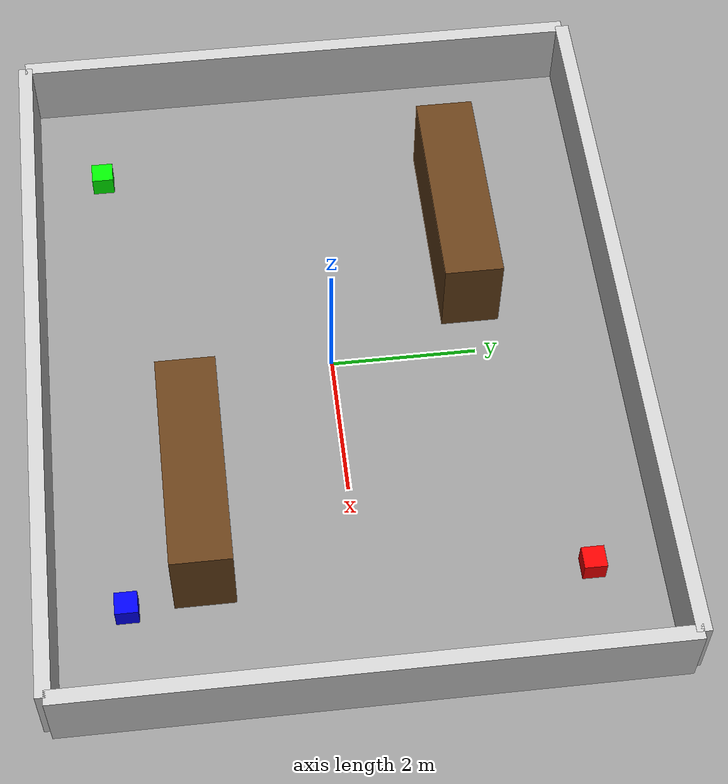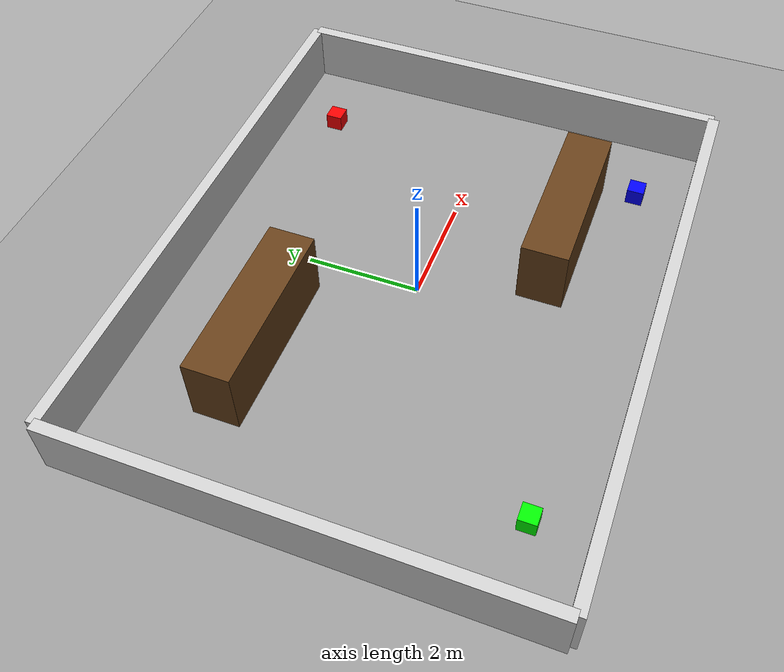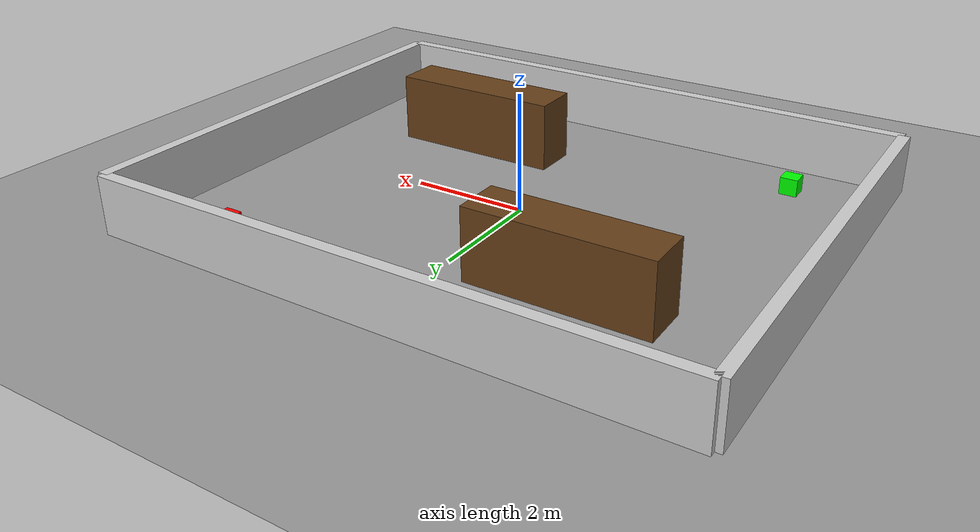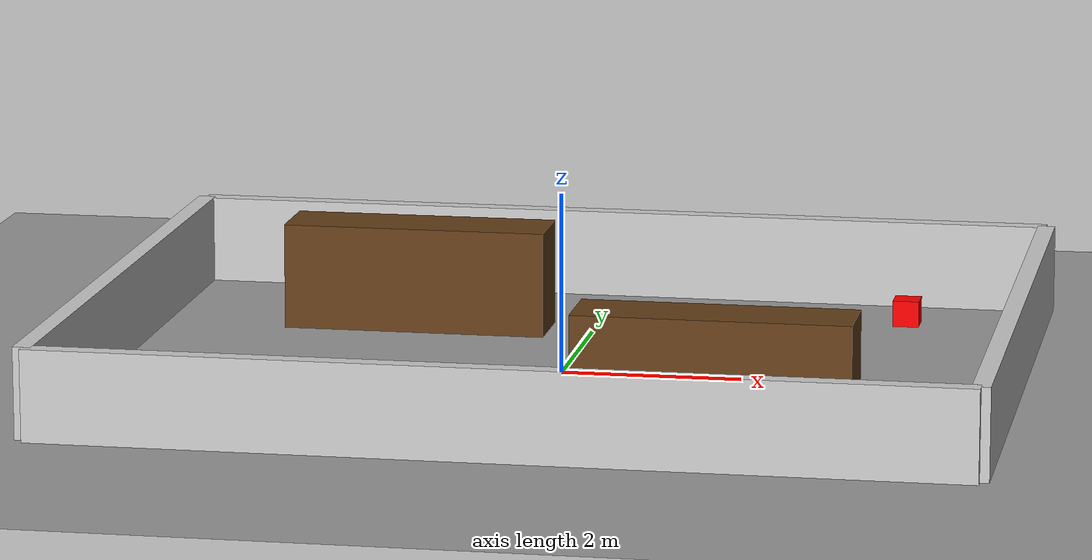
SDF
<?xml version="1.0"?>
<!-- Lightweight simulation world: minimal box geometry, walls, a couple of
     racks, and three colored target cubes (red / green / blue) for object-goal
     navigation. -->
<sdf version="1.8">
  <world name="sim_world">

    <physics name="1ms" type="ignored">
      <max_step_size>0.004</max_step_size>
      <real_time_factor>1.0</real_time_factor>
    </physics>

    <plugin filename="ignition-gazebo-physics-system"
            name="ignition::gazebo::systems::Physics"/>
    <plugin filename="ignition-gazebo-user-commands-system"
            name="ignition::gazebo::systems::UserCommands"/>
    <plugin filename="ignition-gazebo-scene-broadcaster-system"
            name="ignition::gazebo::systems::SceneBroadcaster"/>
    <plugin filename="ignition-gazebo-sensors-system"
            name="ignition::gazebo::systems::Sensors">
      <render_engine>ogre2</render_engine>
    </plugin>

    <scene>
      <ambient>1.0 1.0 1.0 1.0</ambient>
      <background>0.7 0.7 0.8 1.0</background>
      <shadows>false</shadows>
    </scene>

    <light type="directional" name="sun">
      <cast_shadows>false</cast_shadows>
      <pose>0 0 10 0 0 0</pose>
      <diffuse>0.9 0.9 0.9 1</diffuse>
      <specular>0.1 0.1 0.1 1</specular>
      <direction>-0.3 0.2 -0.9</direction>
    </light>

    <model name="ground_plane">
      <static>true</static>
      <link name="link">
        <collision name="collision">
          <geometry><plane><normal>0 0 1</normal><size>30 30</size></plane></geometry>
        </collision>
        <visual name="visual">
          <geometry><plane><normal>0 0 1</normal><size>30 30</size></plane></geometry>
          <material>
            <ambient>0.5 0.5 0.5 1</ambient>
            <diffuse>0.6 0.6 0.6 1</diffuse>
          </material>
        </visual>
      </link>
    </model>

    <model name="wall_n">
      <static>true</static>
      <pose>0 4 0.5 0 0 0</pose>
      <link name="link">
        <collision name="c"><geometry><box><size>10 0.2 1.0</size></box></geometry></collision>
        <visual name="v"><geometry><box><size>10 0.2 1.0</size></box></geometry>
          <material><ambient>0.8 0.8 0.8 1</ambient><diffuse>0.8 0.8 0.8 1</diffuse></material>
        </visual>
      </link>
    </model>
    <model name="wall_s">
      <static>true</static>
      <pose>0 -4 0.5 0 0 0</pose>
      <link name="link">
        <collision name="c"><geometry><box><size>10 0.2 1.0</size></box></geometry></collision>
        <visual name="v"><geometry><box><size>10 0.2 1.0</size></box></geometry>
          <material><ambient>0.8 0.8 0.8 1</ambient><diffuse>0.8 0.8 0.8 1</diffuse></material>
        </visual>
      </link>
    </model>
    <model name="wall_e">
      <static>true</static>
      <pose>5 0 0.5 0 0 0</pose>
      <link name="link">
        <collision name="c"><geometry><box><size>0.2 8 1.0</size></box></geometry></collision>
        <visual name="v"><geometry><box><size>0.2 8 1.0</size></box></geometry>
          <material><ambient>0.8 0.8 0.8 1</ambient><diffuse>0.8 0.8 0.8 1</diffuse></material>
        </visual>
      </link>
    </model>
    <model name="wall_w">
      <static>true</static>
      <pose>-5 0 0.5 0 0 0</pose>
      <link name="link">
        <collision name="c"><geometry><box><size>0.2 8 1.0</size></box></geometry></collision>
        <visual name="v"><geometry><box><size>0.2 8 1.0</size></box></geometry>
          <material><ambient>0.8 0.8 0.8 1</ambient><diffuse>0.8 0.8 0.8 1</diffuse></material>
        </visual>
      </link>
    </model>

    <model name="rack_1">
      <static>true</static>
      <pose>-2.0 2.0 0.6 0 0 0</pose>
      <link name="link">
        <collision name="c"><geometry><box><size>3.0 0.8 1.2</size></box></geometry></collision>
        <visual name="v"><geometry><box><size>3.0 0.8 1.2</size></box></geometry>
          <material><ambient>0.3 0.2 0.1 1</ambient><diffuse>0.4 0.25 0.1 1</diffuse></material>
        </visual>
      </link>
    </model>
    <model name="rack_2">
      <static>true</static>
      <pose>2.0 -2.0 0.6 0 0 0</pose>
      <link name="link">
        <collision name="c"><geometry><box><size>3.0 0.8 1.2</size></box></geometry></collision>
        <visual name="v"><geometry><box><size>3.0 0.8 1.2</size></box></geometry>
          <material><ambient>0.3 0.2 0.1 1</ambient><diffuse>0.4 0.25 0.1 1</diffuse></material>
        </visual>
      </link>
    </model>

    <model name="red_cube">
      <pose>3.5 3.0 0.15 0 0 0</pose>
      <link name="link">
        <collision name="c"><geometry><box><size>0.3 0.3 0.3</size></box></geometry></collision>
        <visual name="v"><geometry><box><size>0.3 0.3 0.3</size></box></geometry>
          <material>
            <ambient>0.8 0.0 0.0 1</ambient>
            <diffuse>1.0 0.0 0.0 1</diffuse>
            <specular>0.1 0.1 0.1 1</specular>
          </material>
        </visual>
        <inertial><mass>1.0</mass>
          <inertia><ixx>0.015</ixx><iyy>0.015</iyy><izz>0.015</izz>
            <ixy>0</ixy><ixz>0</ixz><iyz>0</iyz></inertia></inertial>
      </link>
    </model>
    <model name="green_cube">
      <pose>-3.5 -3.0 0.15 0 0 0</pose>
      <link name="link">
        <collision name="c"><geometry><box><size>0.3 0.3 0.3</size></box></geometry></collision>
        <visual name="v"><geometry><box><size>0.3 0.3 0.3</size></box></geometry>
          <material>
            <ambient>0.0 0.7 0.0 1</ambient>
            <diffuse>0.0 1.0 0.0 1</diffuse>
            <specular>0.1 0.1 0.1 1</specular>
          </material>
        </visual>
        <inertial><mass>1.0</mass>
          <inertia><ixx>0.015</ixx><iyy>0.015</iyy><izz>0.015</izz>
            <ixy>0</ixy><ixz>0</ixz><iyz>0</iyz></inertia></inertial>
      </link>
    </model>
    <model name="blue_cube">
      <pose>3.5 -3.0 0.15 0 0 0</pose>
      <link name="link">
        <collision name="c"><geometry><box><size>0.3 0.3 0.3</size></box></geometry></collision>
        <visual name="v"><geometry><box><size>0.3 0.3 0.3</size></box></geometry>
          <material>
            <ambient>0.0 0.0 0.8 1</ambient>
            <diffuse>0.0 0.0 1.0 1</diffuse>
            <specular>0.1 0.1 0.1 1</specular>
          </material>
        </visual>
        <inertial><mass>1.0</mass>
          <inertia><ixx>0.015</ixx><iyy>0.015</iyy><izz>0.015</izz>
            <ixy>0</ixy><ixz>0</ixz><iyz>0</iyz></inertia></inertial>
      </link>
    </model>

  </world>
</sdf>
